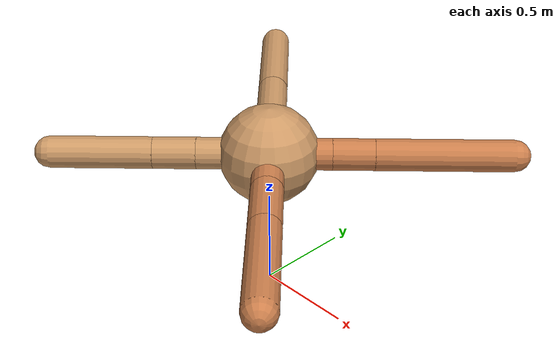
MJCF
<mujoco model="ant">
  <compiler angle="degree" coordinate="local" inertiafromgeom="true" />
  <option integrator="RK4" timestep="0.01" />
  <custom>
    <numeric data="0.0 0.0 0.55 1.0 0.0 0.0 0.0 0.0 1.0 0.0 -1.0 0.0 -1.0 0.0 1.0" name="init_qpos" />
  </custom>
  <default>
    <joint armature="1" damping="1" limited="true" />
    <geom conaffinity="0" condim="3" density="5.0" friction="1.5 0.1 0.1" margin="0.01" rgba="0.8 0.6 0.4 1" />
  </default>
  <worldbody>
    <body name="torso" pos="0 0 0.75">
      <geom name="torso_geom" pos="0 0 0" size="0.25" type="sphere" />

      <body name="front_left_leg" pos="0 0 0">
        <geom fromto="0.0 0.0 0.0 0.22089518914332476 0.22089518914332476 0.0" name="aux_1_geom" size="0.08" type="capsule" rgba=".8 .5 .3 1" />
        <body name="aux_1" pos="0.22089518914332476 0.22089518914332476 0.0">
          <joint axis="0 0 1" name="hip_1" pos="0.0 0.0 0.0" range="-40 40" type="hinge" />
          <geom fromto="0.0 0.0 0.0 0.14866850605501916 0.14866850605501916 0.0" name="left_leg_geom" size="0.08" type="capsule" rgba=".8 .5 .3 1" />
          <body pos="0.14866850605501916 0.14866850605501916 0.0" name="front_left_foot">
            <joint axis="-1 1 0" name="ankle_1" pos="0.0 0.0 0.0" range="30 100" type="hinge" />
            <geom fromto="0.0 0.0 0.0 0.4851649575125288 0.4851649575125288 0.0" name="left_ankle_geom" size="0.08" type="capsule" rgba=".8 .5 .3 1" />
          </body>
        </body>
      </body>
      <body name="front_right_leg" pos="0 0 0">
        <geom fromto="0.0 0.0 0.0 -0.22405315158734648 0.22405315158734648 0.0" name="aux_2_geom" size="0.08" type="capsule" />
        <body name="aux_2" pos="-0.22405315158734648 0.22405315158734648 0.0">
          <joint axis="0 0 1" name="hip_2" pos="0.0 0.0 0.0" range="-40 40" type="hinge" />
          <geom fromto="0.0 0.0 0.0 -0.27733249202791305 0.27733249202791305 0.0" name="right_leg_geom" size="0.08" type="capsule" />
          <body pos="-0.27733249202791305 0.27733249202791305 0.0" name="front_right_foot">
            <joint axis="1 1 0" name="ankle_2" pos="0.0 0.0 0.0" range="-100 -30" type="hinge" />
            <geom fromto="0.0 0.0 0.0 -0.4532940648234755 0.4532940648234755 0.0" name="right_ankle_geom" size="0.08" type="capsule" />
          </body>
        </body>
      </body>
      <body name="left_back_leg" pos="0 0 0">
        <geom fromto="0.0 0.0 0.0 -0.254110721176312 -0.254110721176312 0.0" name="aux_3_geom" size="0.08" type="capsule" />
        <body name="aux_3" pos="-0.254110721176312 -0.254110721176312 0.0">
          <joint axis="0 0 1" name="hip_3" pos="0.0 0.0 0.0" range="-40 40" type="hinge" />
          <geom fromto="0.0 0.0 0.0 -0.1518988404590424 -0.1518988404590424 0.0" name="back_leg_geom" size="0.08" type="capsule" />
          <body pos="-0.1518988404590424 -0.1518988404590424 0.0" name="left_back_foot">
            <joint axis="-1 1 0" name="ankle_3" pos="0.0 0.0 0.0" range="-100 -30" type="hinge" />
            <geom fromto="0.0 0.0 0.0 -0.36032500267644346 -0.36032500267644346 0.0" name="third_ankle_geom" size="0.08" type="capsule" />
          </body>
        </body>
      </body>
      <body name="right_back_leg" pos="0 0 0">
        <geom fromto="0.0 0.0 0.0 0.23900129196657638 -0.23900129196657638 0.0" name="aux_4_geom" size="0.08" type="capsule" rgba=".8 .5 .3 1" />
        <body name="aux_4" pos="0.23900129196657638 -0.23900129196657638 0.0">
          <joint axis="0 0 1" name="hip_4" pos="0.0 0.0 0.0" range="-40 40" type="hinge" />
          <geom fromto="0.0 0.0 0.0 0.21939225910283244 -0.21939225910283244 0.0" name="rightback_leg_geom" size="0.08" type="capsule" rgba=".8 .5 .3 1" />
          <body pos="0.21939225910283244 -0.21939225910283244 0.0" name="right_back_foot">
            <joint axis="1 1 0" name="ankle_4" pos="0.0 0.0 0.0" range="30 100" type="hinge" />
            <geom fromto="0.0 0.0 0.0 0.4087857725566688 -0.4087857725566688 0.0" name="fourth_ankle_geom" size="0.08" type="capsule" rgba=".8 .5 .3 1" />
          </body>
        </body>
      </body>
    </body>
  </worldbody>
  <actuator>
    <motor ctrllimited="true" ctrlrange="-1.0 1.0" joint="hip_4" gear="150" />
    <motor ctrllimited="true" ctrlrange="-1.0 1.0" joint="ankle_4" gear="150" />
    <motor ctrllimited="true" ctrlrange="-1.0 1.0" joint="hip_1" gear="150" />
    <motor ctrllimited="true" ctrlrange="-1.0 1.0" joint="ankle_1" gear="150" />
    <motor ctrllimited="true" ctrlrange="-1.0 1.0" joint="hip_2" gear="150" />
    <motor ctrllimited="true" ctrlrange="-1.0 1.0" joint="ankle_2" gear="150" />
    <motor ctrllimited="true" ctrlrange="-1.0 1.0" joint="hip_3" gear="150" />
    <motor ctrllimited="true" ctrlrange="-1.0 1.0" joint="ankle_3" gear="150" />
  </actuator>
</mujoco>
